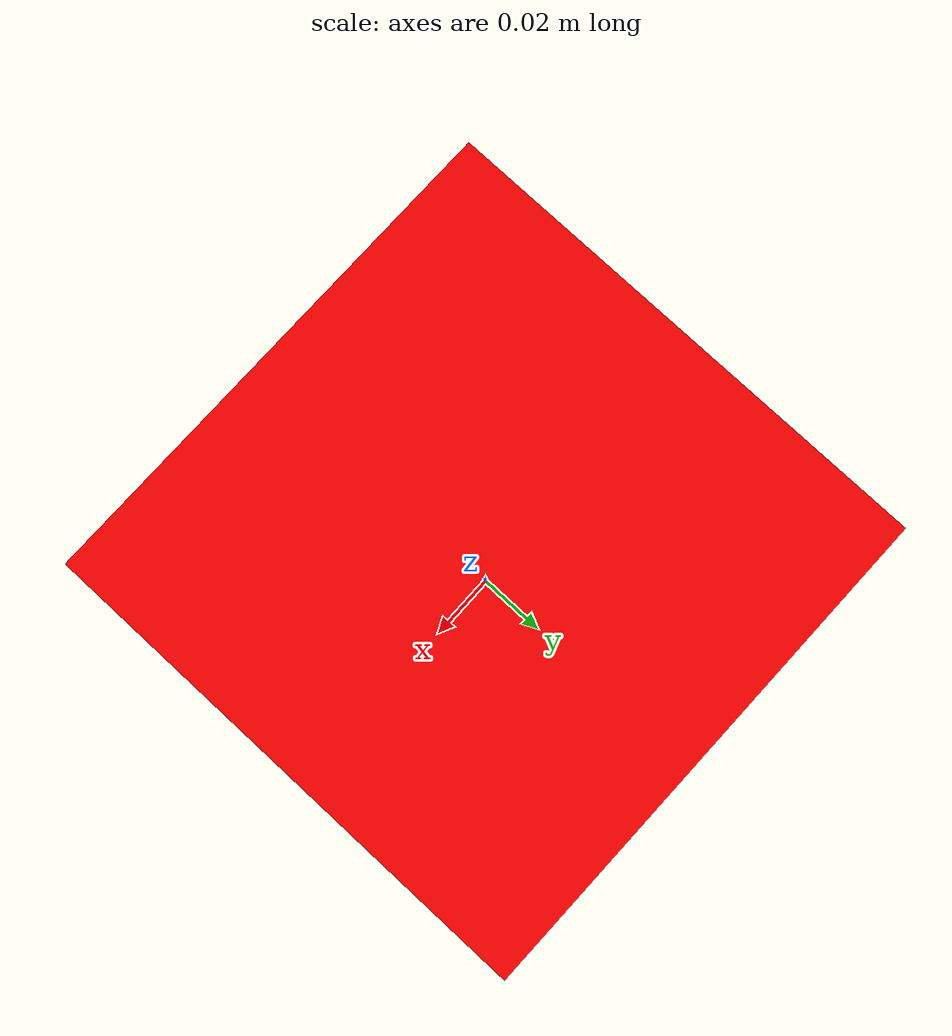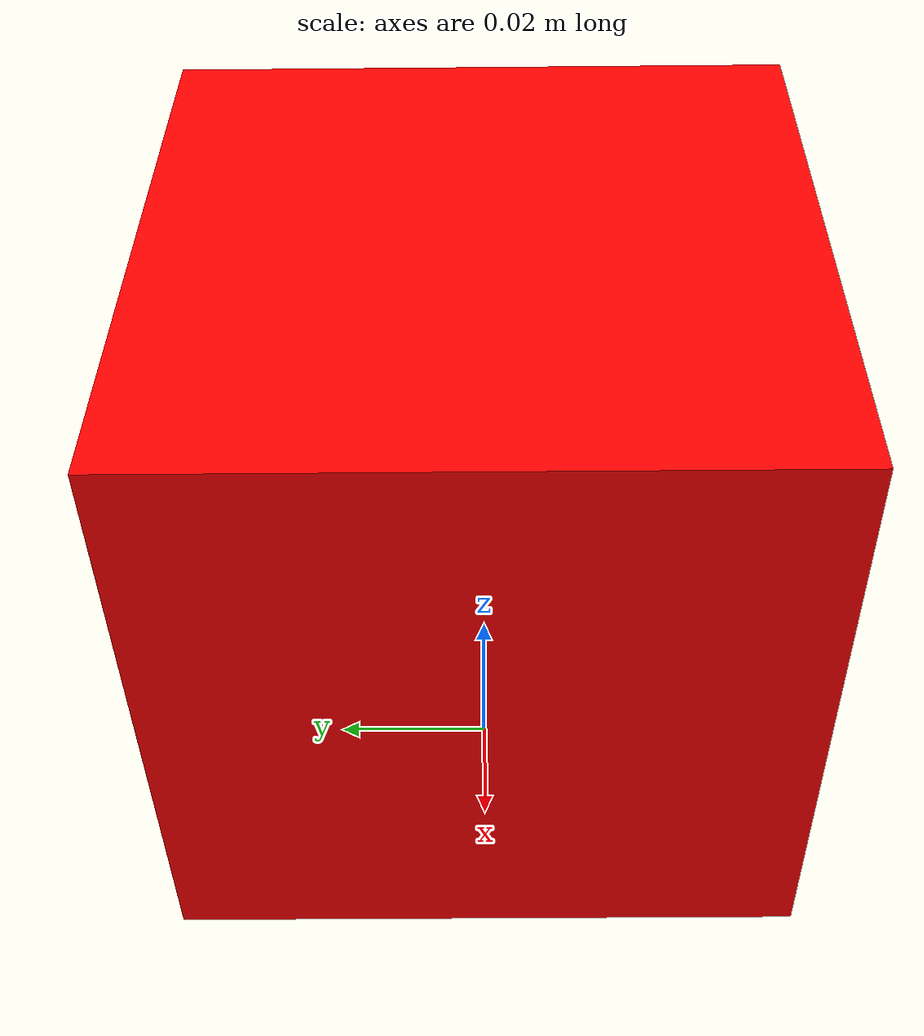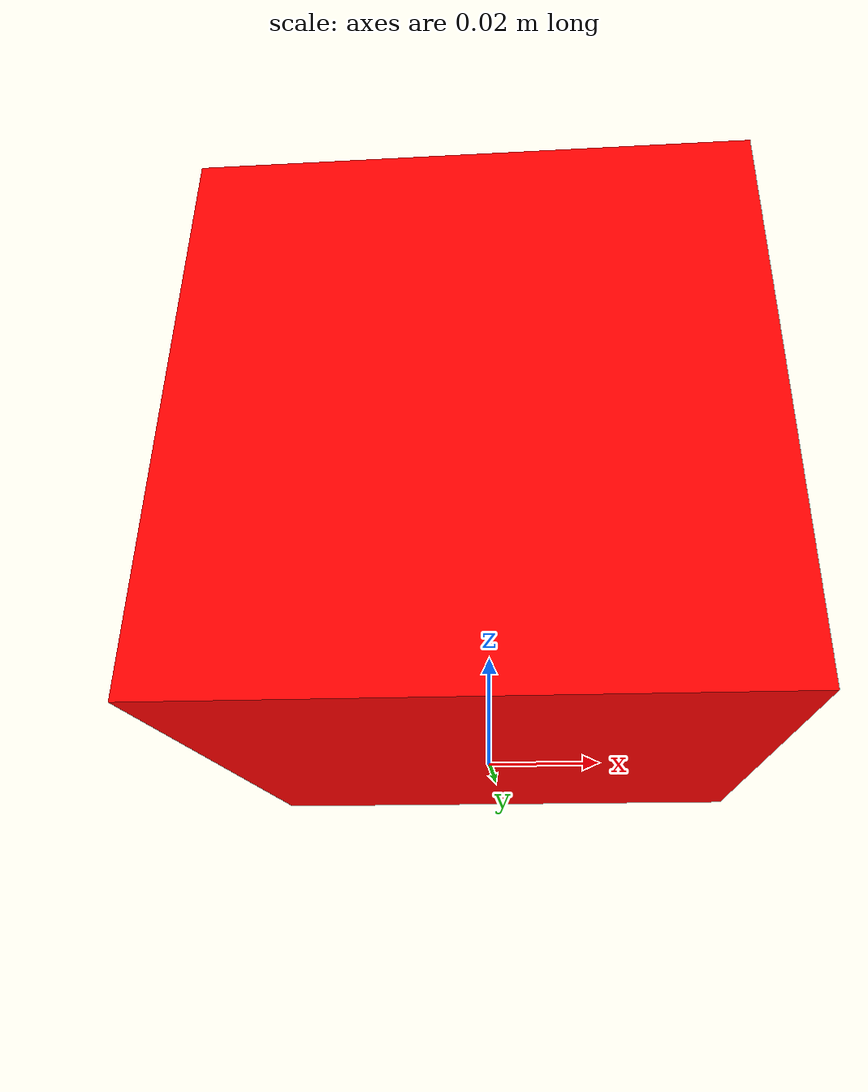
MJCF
<!-- All objects for pusher are centered at 0 0 and bottom touches z = 0 -->
<!-- They must have body name "pusher_object" and free joint named "pusher_object_free_joint"-->
<mujoco model="pusher_object_box">
	<worldbody>
	<body name="pusher_object" pos="0 0 0">
		<geom pos="0 0 0.05" size="0.05 0.05 0.05" type="box" rgba="1 0 0 1"/>
		<!-- Visualization of object in group 1 -->
		<geom pos="0 0 0.05" size="0.048 0.048 0.048" type="box" rgba="1 0 0 1" group="1" conaffinity="0" contype="0"/>
		<joint type="free" name="pusher_object_free_joint"/>
	</body>
	<geom name="pusher_target_g0" pos="0 0 0.05" size="0.049 0.049 0.049" type="box" rgba="0 1 0 1" conaffinity="0" contype="0"/>
	<geom name="pusher_target_g1" pos="0 0 0.05" size="0.047 0.047 0.047" type="box" rgba="0 1 0 1" conaffinity="0" contype="0" group="1"/>
</worldbody>
</mujoco>
